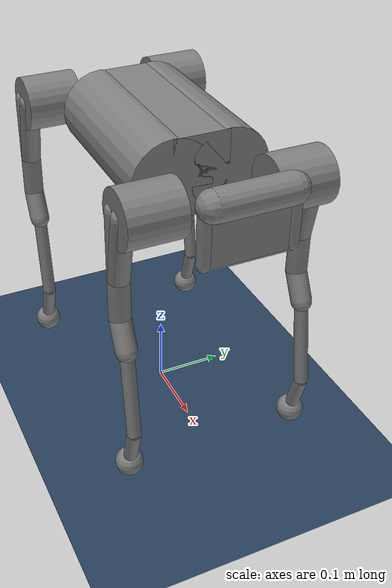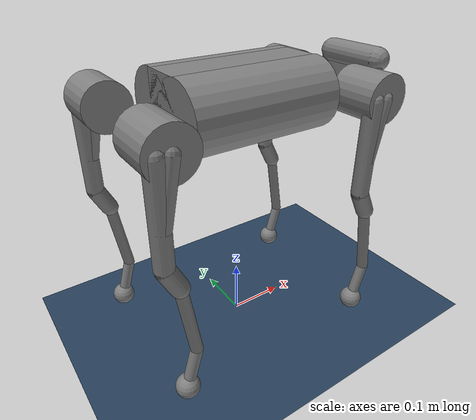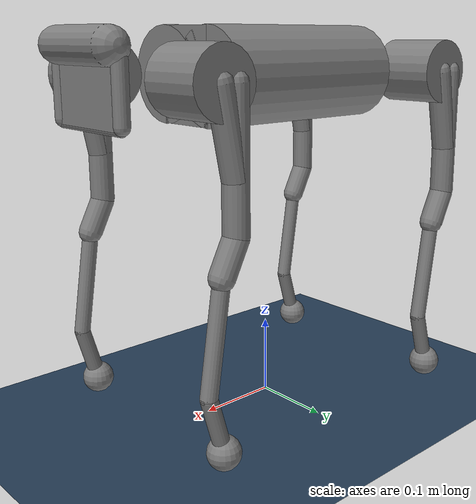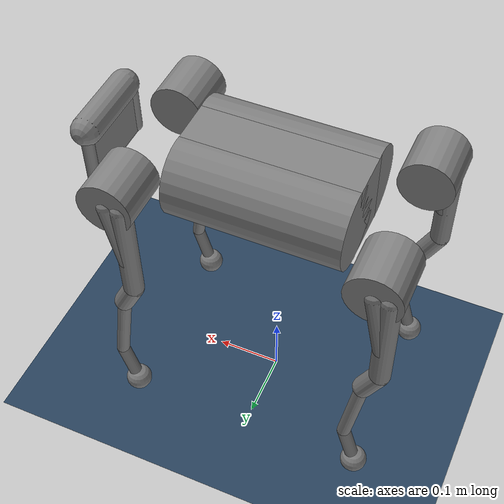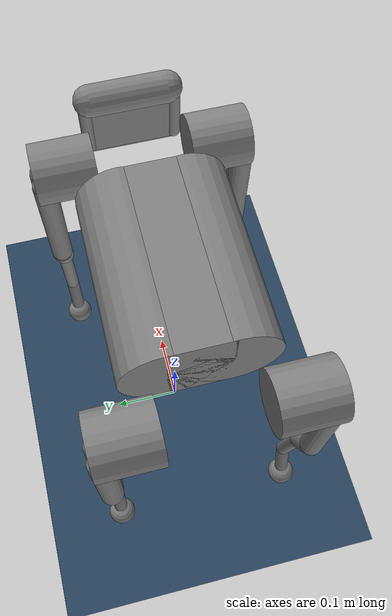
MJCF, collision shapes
<mujoco model="scene">

  <statistic center="0 0 0.1" extent="0.8"/>

  <visual>
    <headlight diffuse="0.6 0.6 0.6"  ambient="0.3 0.3 0.3" specular="0 0 0"/>
    <rgba haze="0.15 0.25 0.35 1"/>
    <global azimuth="120" elevation="-20"/>
  </visual>

  <asset>
    <texture type="skybox" builtin="gradient" rgb1="0.3 0.5 0.7" rgb2="0 0 0" width="512"
        height="3072"/>
    <texture type="2d" name="groundplane" builtin="checker" mark="edge" rgb1="0.2 0.3 0.4"
        rgb2="0.1 0.2 0.3" markrgb="0.8 0.8 0.8" width="300" height="300"/>
    <material name="groundplane" texture="groundplane" texuniform="true" texrepeat="5 5"
        reflectance="0.2"/>
  </asset>

  <include file="a1_position.xml"/>

  <worldbody>
    <geom name="floor" size="0 0 0.05" type="plane" material="groundplane"/>
    <light name="ceiling" pos="0 0 2" dir="0 0 -1" directional="true"/>
    <camera name="target_from_origin" pos="0 0 1.25" xyaxes="0 -1 0 1 0 0" mode="targetbodycom" target="trunk"/>
    <camera name="fixed_right" pos="2 -3 0.5" xyaxes="1 0 0 0 0.08 0.92" fovy="15" mode="fixed"/>
  </worldbody>

</mujoco>

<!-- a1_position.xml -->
<mujoco model="a1">
  <compiler angle="radian" meshdir="assets" texturedir="assets" autolimits="true"/>
  <option cone="elliptic" impratio="100"/>

  <default>
    <default class="a1">
      <geom friction="0.6" margin="0.001"/>
      <joint damping="0.5" armature="0.01" frictionloss="0.2"/>

      <default class="abduction">
        <joint axis="1 0 0" range="-0.802851 0.802851"/>
        <position ctrlrange="-0.802851 0.802851" forcerange="-33.5 33.5" kp="100"/>
      </default>

      <default class="hip">
        <joint axis="0 1 0" range="-1.0472 4.18879"/>
        <position ctrlrange="-1.0472 4.18879" forcerange="-33.5 33.5" kp="100"/>
      </default>

      <default class="knee">
        <joint axis="0 1 0" range="-2.69653 -0.916298"/>
        <position ctrlrange="-2.69653 -0.916298" forcerange="-33.5 33.5" kp="100"/>
      </default>

      <default class="visual">
        <geom group="2" type="mesh" contype="0" conaffinity="0" material="dark"/>
      </default>

      <default class="collision">
        <geom group="3" type="capsule"/>
        <default class="hip_left">
          <geom size="0.04 0.04" quat="1 1 0 0" type="cylinder" pos="0 0.055 0"/>
        </default>
        <default class="hip_right">
          <geom size="0.04 0.04" quat="1 1 0 0" type="cylinder" pos="0 -0.055 0"/>
        </default>
        <default class="thigh1">
          <geom size="0.015" fromto="-0.02 0 0 -0.02 0 -0.16"/>
        </default>
        <default class="thigh2">
          <geom size="0.015" fromto="0 0 0 -0.02 0 -0.1"/>
        </default>
        <default class="thigh3">
          <geom size="0.015" fromto="-0.02 0 -0.16 0 0 -0.2"/>
        </default>
        <default class="calf1">
          <geom size="0.01" fromto="0 0 0 0.02 0 -0.13"/>
        </default>
        <default class="calf2">
          <geom size="0.01" fromto="0.02 0 -0.13 0 0 -0.2"/>
        </default>
        <default class="foot">
          <geom type="sphere" size="0.02" priority="1" solimp="0.015 1 0.031"
              condim="6" friction="0.8 0.02 0.01"/>
          <site type="sphere" size="0.02"/>
        </default>
      </default>
    </default>
  </default>

  <asset>
    <material name="dark" specular="0" shininess="0.25" rgba="0.2 0.2 0.2 1"/>
    <texture type="2d" name="trunk_A1" file="trunk_A1.png"/>
    <material name="carbonfibre" texture="trunk_A1" specular="0" shininess="0.25"/>

    <mesh class="a1" file="calf.obj"/>
    <mesh class="a1" file="hip.obj"/>
    <mesh class="a1" file="thigh.obj"/>
    <mesh class="a1" file="thigh_mirror.obj"/>
    <mesh class="a1" file="trunk.obj"/>
  </asset>

  <worldbody>
    <body name="trunk" pos="0 0 0.43" childclass="a1">
      <freejoint/>

      <light name="spotlight_right" pos="0 -1 2" mode="track" />
      <light name="spotlight_left" pos="0 1 2" mode="track" />
      <camera name="track_top_front"  pos="0 0 1.25" xyaxes="0 -1 0 1 0 0" mode="track"/>
      <camera name="track_top_right"  pos="0 0 1.25" xyaxes="1 0 0 0 1 0" mode="track"/>
      <camera name="track_front" pos="1.25 0 0" xyaxes="0 1 0 0 0 1" mode="track"/>
      <camera name="track_back"  pos="-1.25 0 0" xyaxes="0 -1 0 0 0 1" mode="track"/>
      <camera name="track_right" pos="0 -1.25 0" xyaxes="1 0 0 0 0 1" mode="track"/>
      <camera name="track_left"  pos="0 1.25 0" xyaxes="-1 0 0 0 0 1" mode="track"/>

      <inertial mass="4.713" pos="0 0.0041 -0.0005"
          fullinertia="0.0158533 0.0377999 0.0456542 -3.66e-05 -6.11e-05 -2.75e-05"/>
      <site name="imu" pos="0 0 0"/>
      <geom class="visual" mesh="trunk" material="carbonfibre"/>
      <geom class="collision" size="0.125 0.04 0.057" type="box"/>
      <geom class="collision" quat="1 0 1 0" pos="0 -0.04 0" size="0.058 0.125" type="cylinder"/>
      <geom class="collision" quat="1 0 1 0" pos="0 +0.04 0" size="0.058 0.125" type="cylinder"/>
      <geom class="collision" pos="0.25 0 0" size="0.005 0.06 0.05" type="box"/>
      <geom class="collision" pos="0.25 0.06 -0.01" size="0.009 0.035"/>
      <geom class="collision" pos="0.25 -0.06 -0.01" size="0.009 0.035"/>
      <geom class="collision" pos="0.25 0 -0.05" size="0.005 0.06" quat="1 1 0 0"/>
      <geom class="collision" pos="0.255 0 0.0355" size="0.021 0.052" quat="1 1 0 0"/>

      <body name="FR_hip" pos="0.183 -0.047 0">
        <inertial mass="0.696" pos="-0.003311 -0.000635 3.1e-05"
            quat="0.507528 0.506268 0.491507 0.494499"
            diaginertia="0.000807752 0.00055293 0.000468983"/>
        <joint class="abduction" name="FR_hip_joint"/>
        <geom class="visual" mesh="hip" quat="0 1 0 0"/>
        <geom class="hip_right"/>

        <body name="FR_thigh" pos="0 -0.08505 0">
          <inertial mass="1.013" pos="-0.003237 0.022327 -0.027326"
              quat="0.999125 -0.00256393 -0.0409531 -0.00806091"
              diaginertia="0.00555739 0.00513936 0.00133944"/>
          <joint class="hip" name="FR_thigh_joint"/>
          <geom class="visual" mesh="thigh_mirror"/>
          <geom class="thigh1"/>
          <geom class="thigh2"/>
          <geom class="thigh3"/>

          <body name="FR_calf" pos="0 0 -0.2">
            <inertial mass="0.226" pos="0.00472659 0 -0.131975"
                quat="0.706886 0.017653 0.017653 0.706886"
                diaginertia="0.00340344 0.00339393 3.54834e-05"/>
            <joint class="knee" name="FR_calf_joint"/>
            <geom class="visual" mesh="calf"/>
            <geom class="calf1"/>
            <geom class="calf2"/>

            <body name="FR_foot" pos="0 0 -0.2">
              <inertial mass="0.0001" pos="0 0 0" diaginertia="0 0 0"/>
              <geom class="foot"/>
              <site name="FR_foot_site" class="foot"/>
            </body>
          </body>
        </body>
      </body>

      <body name="FL_hip" pos="0.183 0.047 0">
        <inertial mass="0.696" pos="-0.003311 0.000635 3.1e-05"
            quat="0.494499 0.491507 0.506268 0.507528"
            diaginertia="0.000807752 0.00055293 0.000468983"/>
        <joint class="abduction" name="FL_hip_joint"/>
        <geom class="visual" mesh="hip"/>
        <geom class="hip_left"/>
        <geom class="collision" size="0.04 0.04" pos="0 0.055 0" quat="1 1 0 0" type="cylinder"/>

        <body name="FL_thigh" pos="0 0.08505 0">
          <inertial mass="1.013" pos="-0.003237 -0.022327 -0.027326"
              quat="0.999125 0.00256393 -0.0409531 0.00806091"
              diaginertia="0.00555739 0.00513936 0.00133944"/>
          <joint class="hip" name="FL_thigh_joint"/>
          <geom class="visual" mesh="thigh"/>
          <geom class="thigh1"/>
          <geom class="thigh2"/>
          <geom class="thigh3"/>

          <body name="FL_calf" pos="0 0 -0.2">
            <inertial mass="0.226" pos="0.00472659 0 -0.131975"
                quat="0.706886 0.017653 0.017653 0.706886"
                diaginertia="0.00340344 0.00339393 3.54834e-05"/>
            <joint class="knee" name="FL_calf_joint"/>
            <geom class="visual" mesh="calf"/>
            <geom class="calf1"/>
            <geom class="calf2"/>

            <body name="FL_foot" pos="0 0 -0.2">
              <inertial mass="0.0001" pos="0 0 0" diaginertia="0 0 0"/>
              <geom class="foot"/>
              <site name="FL_foot_site" class="foot"/>
            </body>
          </body>
        </body>
      </body>

      <body name="RR_hip" pos="-0.183 -0.047 0">
        <inertial mass="0.696" pos="0.003311 -0.000635 3.1e-05"
            quat="0.491507 0.494499 0.507528 0.506268"
            diaginertia="0.000807752 0.00055293 0.000468983"/>
        <joint class="abduction" name="RR_hip_joint"/>
        <geom class="visual" quat="0 0 0 -1" mesh="hip"/>
        <geom class="hip_right"/>

        <body name="RR_thigh" pos="0 -0.08505 0">
          <inertial mass="1.013" pos="-0.003237 0.022327 -0.027326"
              quat="0.999125 -0.00256393 -0.0409531 -0.00806091"
              diaginertia="0.00555739 0.00513936 0.00133944"/>
          <joint class="hip" name="RR_thigh_joint"/>
          <geom class="visual" mesh="thigh_mirror"/>
          <geom class="thigh1"/>
          <geom class="thigh2"/>
          <geom class="thigh3"/>

          <body name="RR_calf" pos="0 0 -0.2">
            <inertial mass="0.226" pos="0.00472659 0 -0.131975"
                quat="0.706886 0.017653 0.017653 0.706886"
                diaginertia="0.00340344 0.00339393 3.54834e-05"/>
            <joint class="knee" name="RR_calf_joint"/>
            <geom class="visual" mesh="calf"/>
            <geom class="calf1"/>
            <geom class="calf2"/>

            <body name="RR_foot" pos="0 0 -0.2">
              <inertial mass="0.0001" pos="0 0 0" diaginertia="0 0 0"/>
              <geom class="foot"/>
              <site name="RR_foot_site" class="foot"/>
            </body>
          </body>
        </body>
      </body>

      <body name="RL_hip" pos="-0.183 0.047 0">
        <inertial mass="0.696" pos="0.003311 0.000635 3.1e-05"
            quat="0.506268 0.507528 0.494499 0.491507"
            diaginertia="0.000807752 0.00055293 0.000468983"/>
        <joint class="abduction" name="RL_hip_joint"/>
        <geom class="visual" quat="0 0 1 0" mesh="hip"/>
        <geom class="hip_left"/>

        <body name="RL_thigh" pos="0 0.08505 0">
          <inertial mass="1.013" pos="-0.003237 -0.022327 -0.027326"
              quat="0.999125 0.00256393 -0.0409531 0.00806091"
              diaginertia="0.00555739 0.00513936 0.00133944"/>
          <joint class="hip" name="RL_thigh_joint"/>
          <geom class="visual" mesh="thigh"/>
          <geom class="thigh1"/>
          <geom class="thigh2"/>
          <geom class="thigh3"/>

          <body name="RL_calf" pos="0 0 -0.2">
            <inertial mass="0.226" pos="0.00472659 0 -0.131975"
                quat="0.706886 0.017653 0.017653 0.706886"
                diaginertia="0.00340344 0.00339393 3.54834e-05"/>
            <joint class="knee" name="RL_calf_joint"/>
            <geom class="visual" mesh="calf"/>
            <geom class="calf1"/>
            <geom class="calf2"/>
            <body name="RL_foot" pos="0 0 -0.2">
              <inertial mass="0.0001" pos="0 0 0" diaginertia="0 0 0"/>
              <geom class="foot"/>
              <site name="RL_foot_site" class="foot"/>
            </body>
          </body>
        </body>
      </body>
    </body>
  </worldbody>

  <actuator>
    <position class="abduction" name="FR_hip"   joint="FR_hip_joint"/>
    <position class="hip"       name="FR_thigh" joint="FR_thigh_joint"/>
    <position class="knee"      name="FR_calf"  joint="FR_calf_joint"/>
    <position class="abduction" name="FL_hip"   joint="FL_hip_joint"/>
    <position class="hip"       name="FL_thigh" joint="FL_thigh_joint"/>
    <position class="knee"      name="FL_calf"  joint="FL_calf_joint"/>
    <position class="abduction" name="RR_hip"   joint="RR_hip_joint"/>
    <position class="hip"       name="RR_thigh" joint="RR_thigh_joint"/>
    <position class="knee"      name="RR_calf"  joint="RR_calf_joint"/>
    <position class="abduction" name="RL_hip"   joint="RL_hip_joint"/>
    <position class="hip"       name="RL_thigh" joint="RL_thigh_joint"/>
    <position class="knee"      name="RL_calf"  joint="RL_calf_joint"/>
  </actuator>

  <sensor>
    <gyro name="gyro" site="imu"/>
    <accelerometer name="accelerometer" site="imu"/>
    <framequat name="framequat" objtype="site" objname="imu"/>
    <velocimeter name="velocimeter" site="imu"/>
    <touch name="FR_foot" site="FR_foot_site"/>
    <touch name="FL_foot" site="FL_foot_site"/>
    <touch name="RR_foot" site="RR_foot_site"/>
    <touch name="RL_foot" site="RL_foot_site"/>
  </sensor>

  <keyframe>
    <key
      name="home"
      qpos="0 0 0.27 1 0 0 0 0 0.9 -1.8 0 0.9 -1.8 0 0.9 -1.8 0 0.9 -1.8"
      ctrl="0 0.9 -1.8 0 0.9 -1.8 0 0.9 -1.8 0 0.9 -1.8"/>
  </keyframe>
</mujoco>
